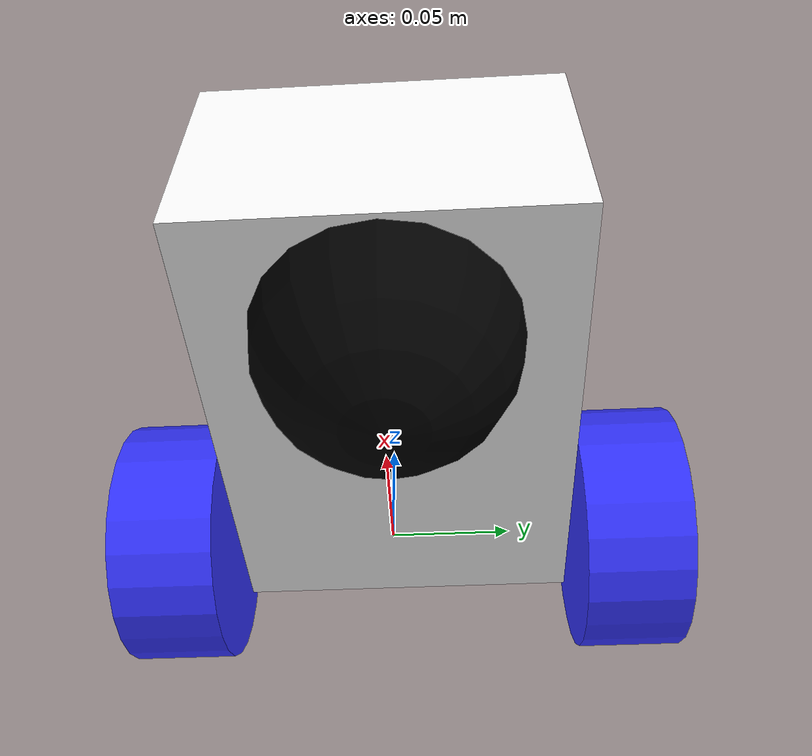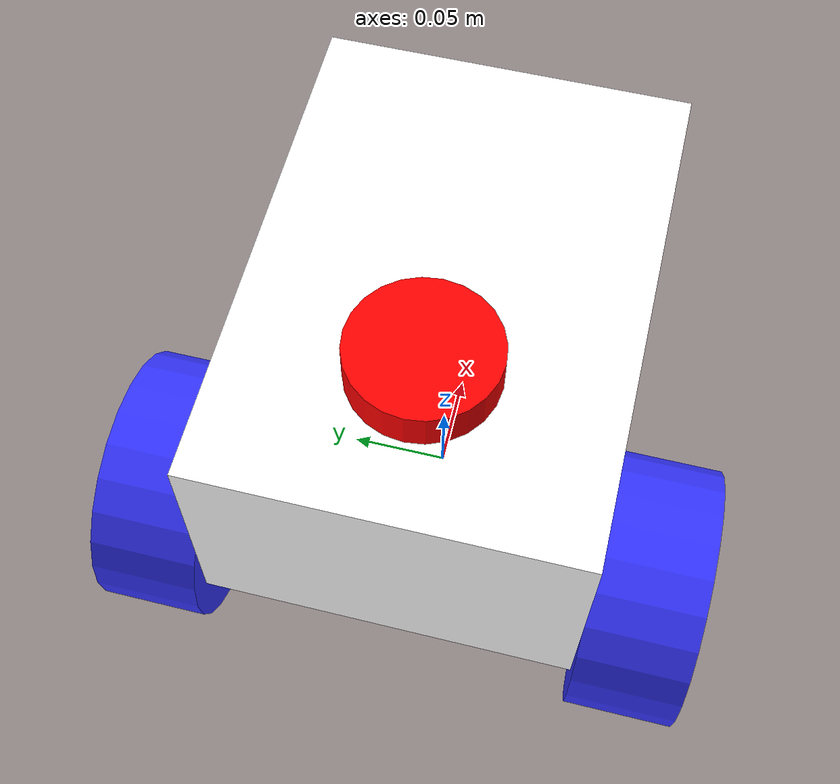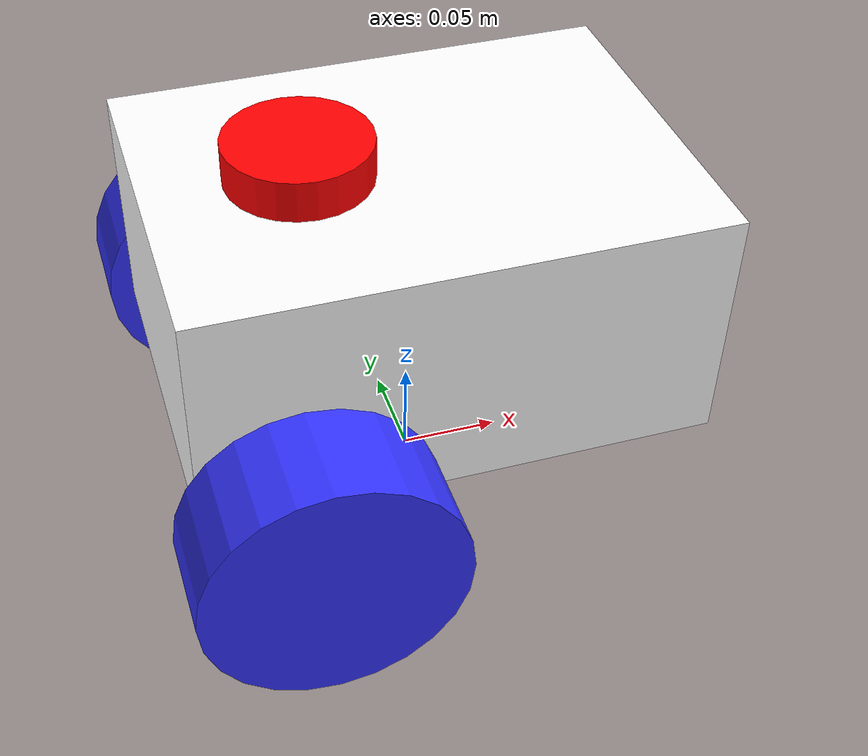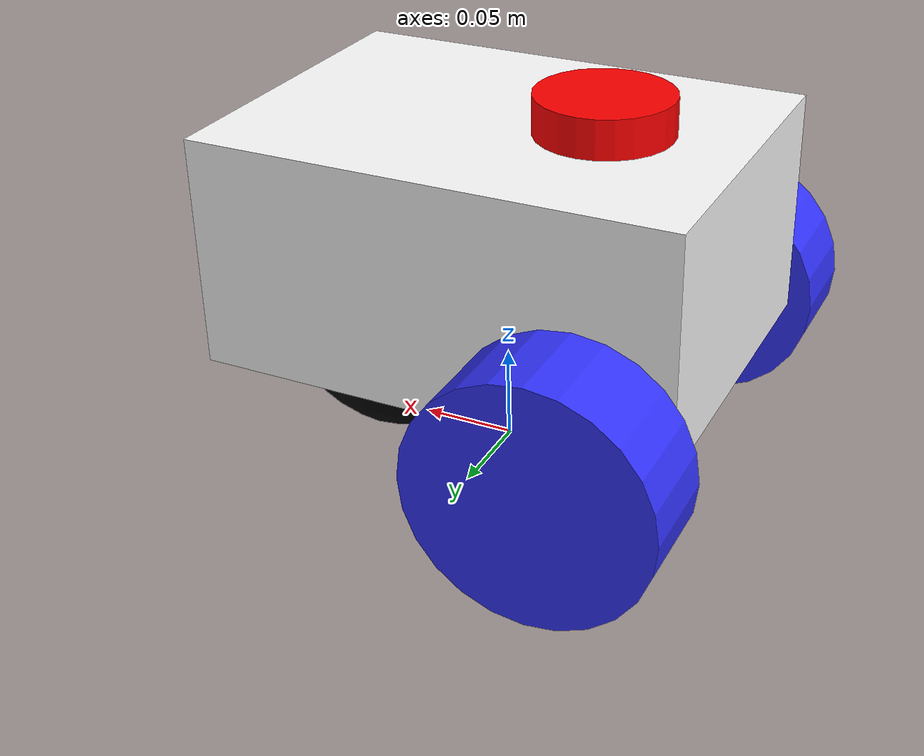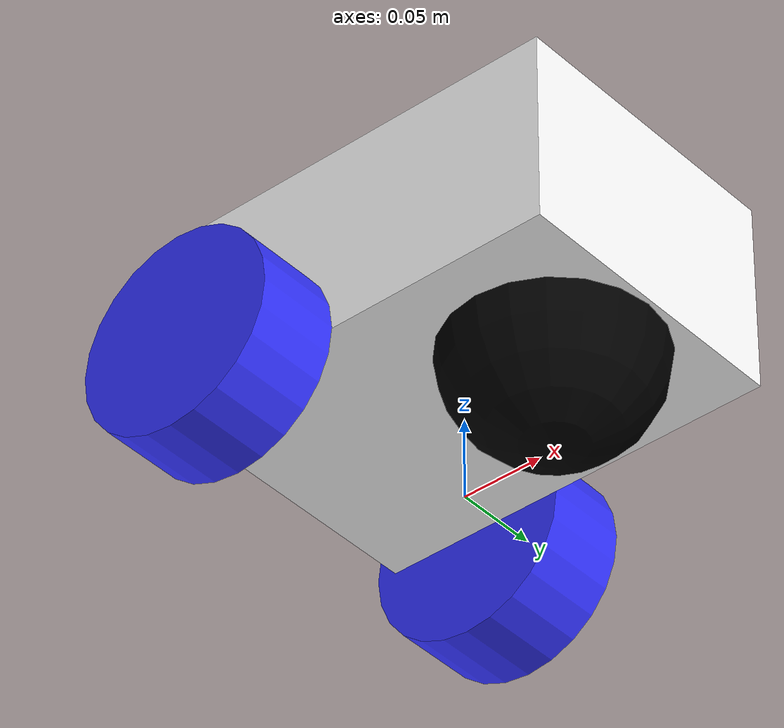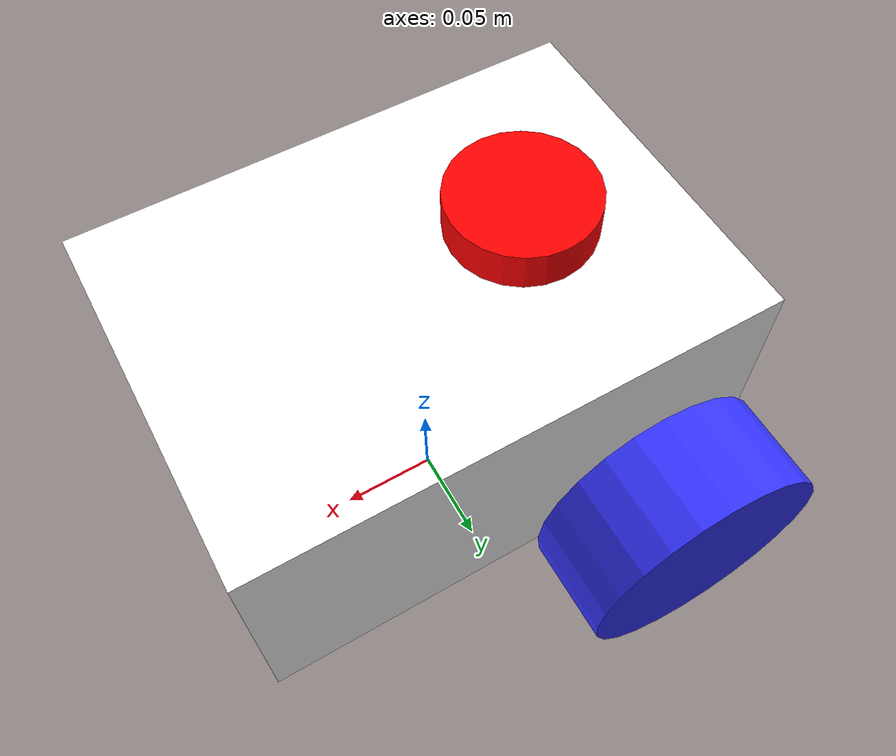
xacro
<?xml version="1.0"?>
<robot xmlns:xacro="http://www.ros.org/wiki/xacro" name="robot">

    <xacro:include filename="robot_core_differential_robot.xacro" />

    <xacro:arg name="use_ros2_control" default="true" />

    <xacro:if value="$(arg use_ros2_control)">
        <xacro:include filename="ros2_control.xacro" />
    </xacro:if>
    <xacro:unless value="$(arg use_ros2_control)">
        <xacro:include filename="gazebo_control.xacro" />
    </xacro:unless>

    <xacro:include filename="lidar2D.xacro" />

</robot>

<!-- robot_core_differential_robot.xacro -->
<robot xmlns:xacro="http://www.ros.org/wiki/xacro">

    <xacro:include filename="inertial_macros.xacro" />

    <material name="white">
        <color rgba="1 1 1 1" />
    </material>

    <material name="orange">
        <color rgba="1 0.3 0.1 1" />
    </material>

    <material name="blue">
        <color rgba="0.2 0.2 1 1" />
    </material>

    <material name="black">
        <color rgba="0 0 0 1" />
    </material>

    <material name="red">
        <color rgba="1 0 0 1" />
    </material>

    <!--BASE
    FOOTPRINT-->
    <link name="base_footprint">
    </link>

    <!--BASE
    LINK-->
    <joint name="base_joint" type="fixed">
        <parent link="base_footprint" />
        <child link="base_link" />
        <origin xyz="0 0 0.0625" />
    </joint>

    <link name="base_link">
        <visual>
            <origin xyz="0 0.0 0.06" />
            <geometry>
                <box size="0.25 0.18 0.12" />
            </geometry>
            <material name="white" />
        </visual>
        <collision>
            <origin xyz="0 0.0 0.06" />
            <geometry>
                <box size="0 0.18 0.12" />
            </geometry>
        </collision>
        <xacro:inertial_box mass="0.5" x="0.3" y="0.3" z="0.15">
            <origin xyz="0 0.0 0.06" rpy="0 0 0" />
        </xacro:inertial_box>
    </link>

    <gazebo reference="base_link">
        <material>Gazebo/Purple</material>
    </gazebo>

    <!--LEFT
    WHEEL BACK LINK-->
    <joint name="left_wheel_back_joint" type="continuous">
        <parent link="base_link" />
        <child link="left_wheel_back_link" />
        <origin
            xyz="-0.075 0.116 0.0" rpy="-${pi/2} 0.0 0.0" />
        <axis xyz="0.0 0.0 1" />
    </joint>

    <link name="left_wheel_back_link">
        <visual>
            <geometry>
                <cylinder radius="0.0625" length="0.05132" />
            </geometry>
            <material name="blue" />
        </visual>
        <collision>
            <geometry>
                <cylinder radius="0.0625" length="0.05132" />
            </geometry>
        </collision>
        <xacro:inertial_cylinder mass="0.1" length="0.04" radius="0.05">
            <origin xyz="0 0 0" rpy="0 0 0" />
        </xacro:inertial_cylinder>
    </link>

    <gazebo reference="left_wheel_back_link">
        <material>Gazebo/Blue</material>
    </gazebo>

    <!--RIGHT
    WHEEL BACK LINK-->
    <joint name="right_wheel_back_joint" type="continuous">
        <parent link="base_link" />
        <child link="right_wheel_back_link" />
        <origin xyz="-0.075 -0.116 0.0" rpy="${pi/2} 0.0 0.0" />
        <axis xyz="0.0 0.0 -1" />
    </joint>

    <link name="right_wheel_back_link">
        <visual>
            <geometry>
                <cylinder radius="0.0625" length="0.05132" />
            </geometry>
            <material name="blue" />
        </visual>
        <collision>
            <geometry>
                <cylinder radius="0.0625" length="0.05132" />
            </geometry>
        </collision>
        <xacro:inertial_cylinder mass="0.1" length="0.04" radius="0.05">
            <origin xyz="0 0 0" rpy="0 0 0" />
        </xacro:inertial_cylinder>
    </link>

    <gazebo reference="right_wheel_back_link">
        <material>Gazebo/Blue</material>

    </gazebo>

    <!-- CASTER WHEEL LINK -->

    <joint name="caster_wheel_joint" type="fixed">
        <parent link="base_link" />
        <child link="caster_wheel_link" />
        <origin xyz="0.06 0 0.0" />
    </joint>

    <link name="caster_wheel_link">
        <visual>
            <geometry>
                <sphere radius="0.0625" />
            </geometry>
            <material name="black" />
        </visual>
        <collision>
            <geometry>
                <sphere radius="0.0625" />
            </geometry>
        </collision>
        <xacro:inertial_sphere mass="0.1" radius="0.0625">
            <origin xyz="0 0 0" rpy="0 0 0" />
        </xacro:inertial_sphere>
    </link>

    <gazebo reference="caster_wheel_link">
        <material>Gazebo/Black</material>
        <mu1 value="0.002" />
        <mu2 value="0.002" />
    </gazebo>

</robot>

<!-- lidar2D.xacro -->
<robot xmlns:xacro="http://www.ros.org/wiki/xacro">

    <joint name="lidar2D_joint" type="fixed">
        <parent link="base_link" />
        <child link="lidar2D_frame" />
        <origin xyz="-0.052 0.0 0.12" rpy="0.0 0.0 0.0" />
    </joint>

    <link name="lidar2D_frame">
        <visual>
            <geometry>
                <cylinder radius="0.035" length="0.04" />
            </geometry>
            <material name="red" />
        </visual>
        <collision>
            <geometry>
                <cylinder radius="0.035" length="0.04" />
            </geometry>
        </collision>
        <xacro:inertial_cylinder mass="0.1" length="0.04" radius="0.05">
            <origin xyz="0 0 0" rpy="0 0 0" />
        </xacro:inertial_cylinder>
    </link>

    <gazebo reference="lidar2D_frame">
        <material>Gazebo/Red</material>

        <sensor name="lidar2D" type="ray">
            <pose> 0 0 0 0 0 0 </pose> <!-- origin sensor is in origin of lidar2D_frame-->
            <visualize>false</visualize> <!-- display sensor in gazebo-->
            <update_rate>10</update_rate> <!-- update data from sensor 10 times/sencond-->
            <ray><!-- paramettor of ray sensor-->
                <scan>
                    <horizontal><!-- scan horizontally-->
                        <samples>360</samples>
                        <resolution>1</resolution>
                        <min_angle>-3.14</min_angle>
                        <max_angle>3.14</max_angle>
                    </horizontal>
                </scan>
                <range>
                    <min>0.3</min>
                    <max>12</max>
                    <resolution>0.01</resolution>
                </range>
            </ray>
            <plugin name="lidar2D_controller" filename="libgazebo_ros_ray_sensor.so">
                <!-- plugin is the thing that gazebo interact with the thing outside gazebo-->
                <ros>
                    <argument>~/out:=scan</argument> <!-- topic scan-->
                </ros>
                <output_type>sensor_msgs/LaserScan</output_type>
                <frame_name>lidar2D_frame</frame_name>
            </plugin>
        </sensor>
    </gazebo>

</robot>
